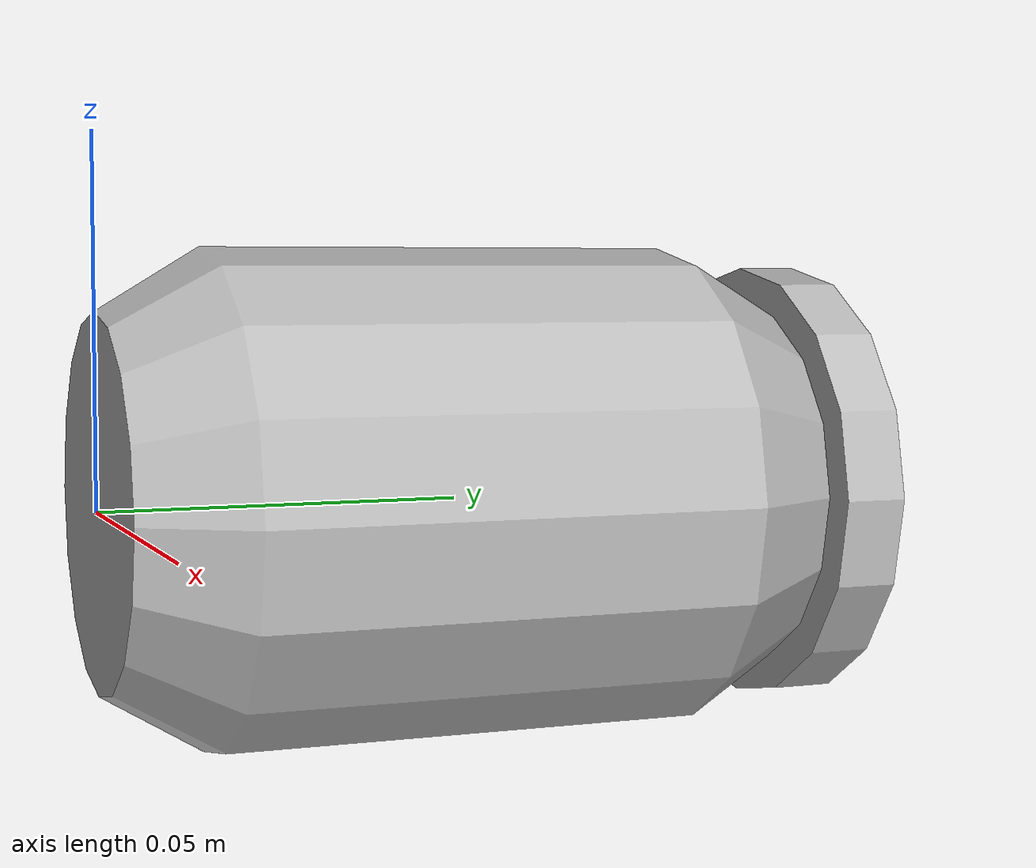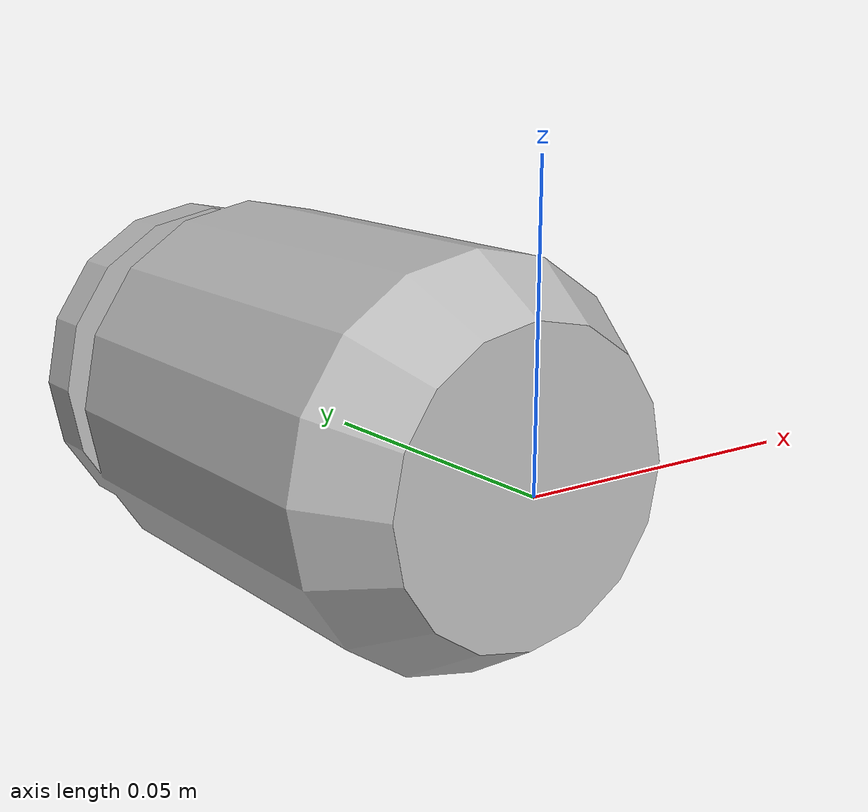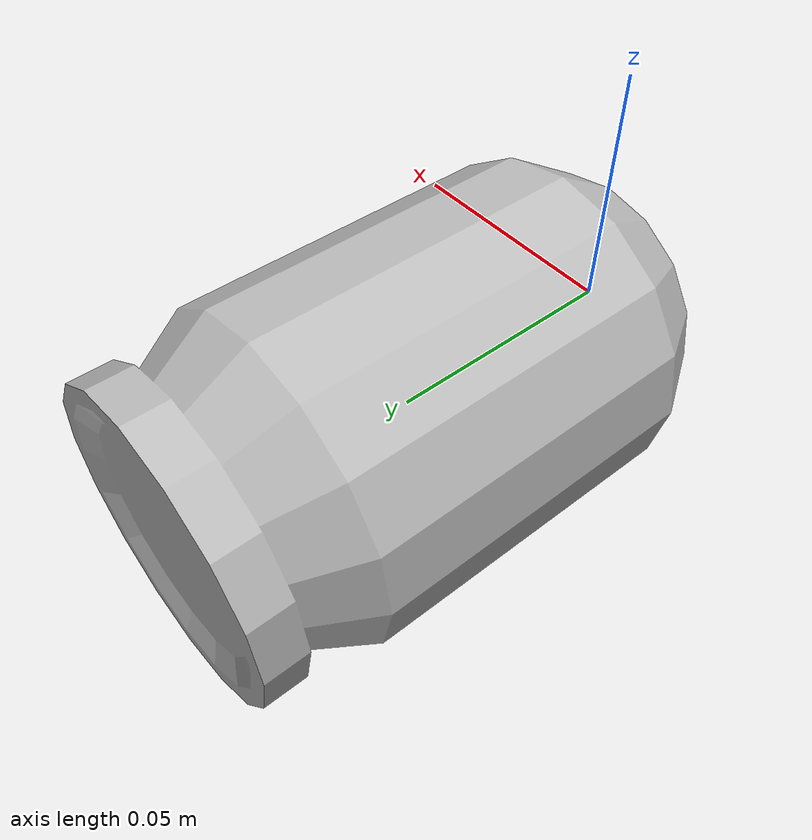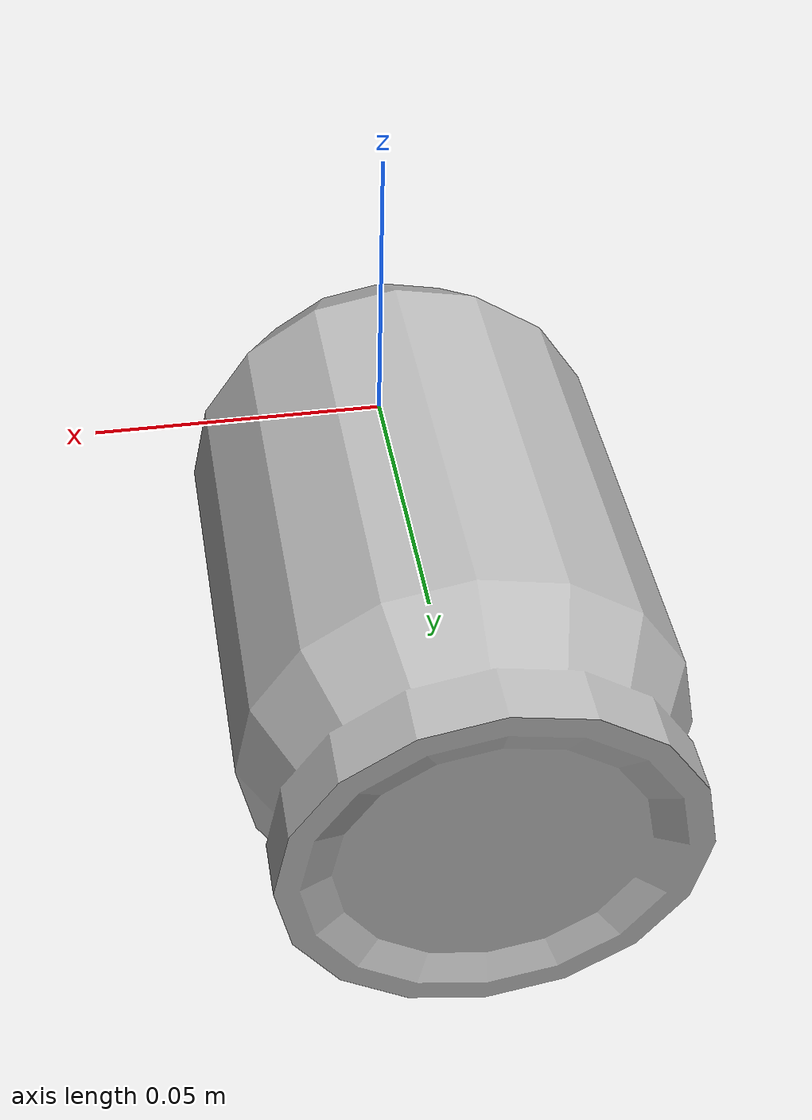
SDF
<?xml version="1.0" ?>
<sdf version="1.4">
  <model name="shelf2_bottle2_1a">
    <link name="body">
      <pose>0 0 0 0 0 0</pose>
      <inertial>
        <pose>  -0.000000   0.060007   0.001000 0 0 0</pose>
        <mass>0.5</mass>
        <inertia>
          <ixx>0.01</ixx>
          <ixy>0</ixy>
          <ixz>0</ixz>
          <iyy>0.01</iyy>
          <iyz>0</iyz>
          <izz>0.01</izz>
        </inertia>
      </inertial>
      <collision name="collision">
        <geometry>
          <mesh>
            <uri>model://bookshelf/shelf2_items/bottle2_1a/bottle2_1a.dae</uri>
          </mesh>
        </geometry>
      </collision>
      <visual name="visual">
        <geometry>
          <mesh>
            <uri>model://bookshelf/shelf2_items/bottle2_1a/bottle2_1a.dae</uri>
          </mesh>
        </geometry>
      </visual>
    </link>
  </model>
</sdf>
